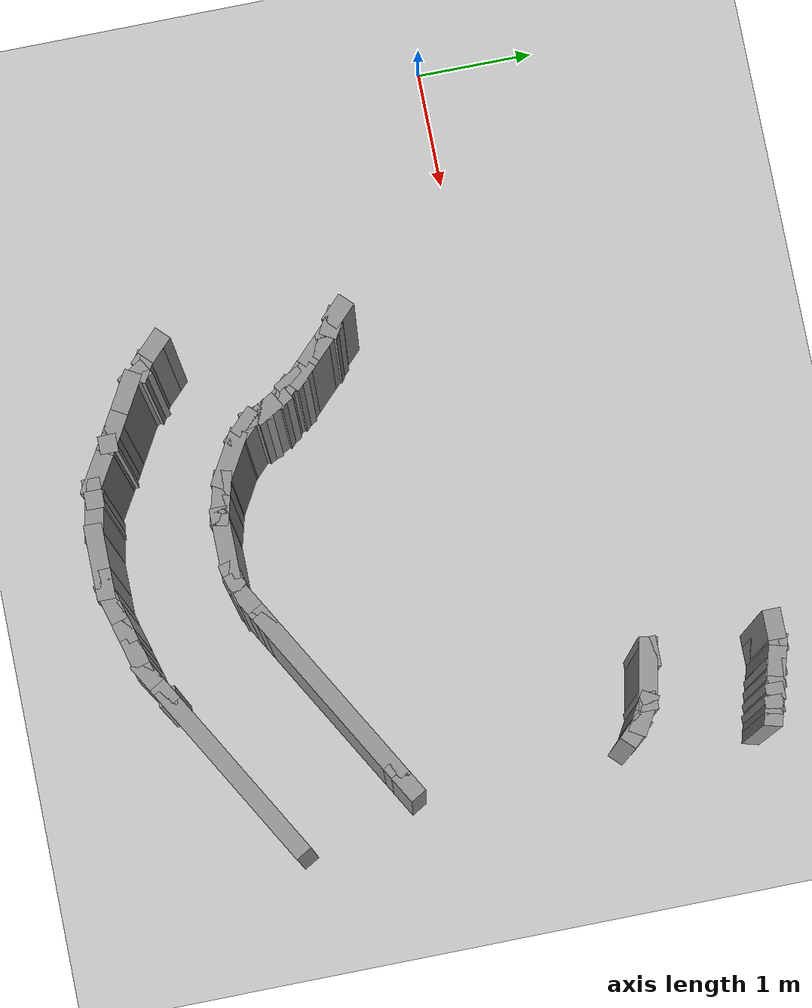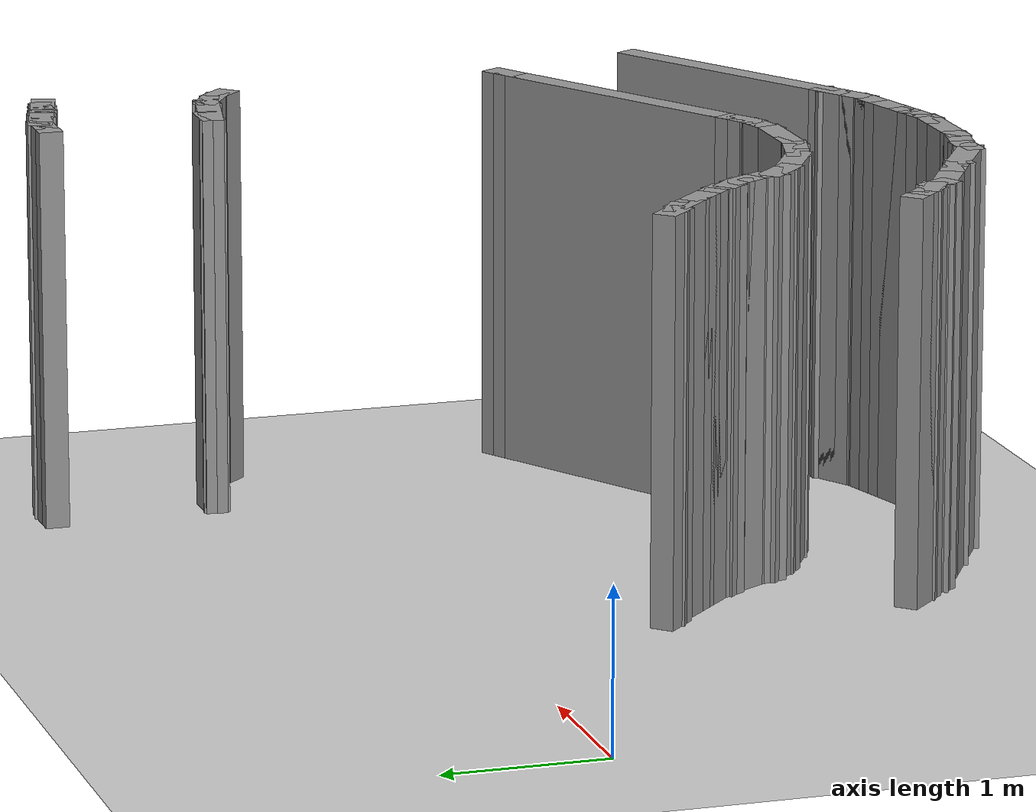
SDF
<sdf version="1.7">
 <world name="default">
  <model name="ground_plane">
   <static>1</static>
   <link name="link">
    <collision name="collision">
     <geometry><plane><normal>0 0 1</normal><size>100 100</size></plane></geometry>
     <surface><friction><ode><mu>100</mu><mu2>50</mu2></ode></friction></surface>
    </collision>
    <visual name="visual">
     <cast_shadows>0</cast_shadows>
     <geometry><plane><normal>0 0 1</normal><size>100 100</size></plane></geometry>
     <material>
      <script><uri>file://media/materials/scripts/gazebo.material</uri><name>Gazebo/Grey</name></script>
     </material>
    </visual>
   </link>
  </model>
  <model name="playground_track">
   <pose>0.405729 -1.1815 0 0 -0 0</pose>
   <link name="Wall_100">
    <collision name="Wall_100_Collision">
     <geometry><box><size>0.25 0.15 2.5</size></box></geometry>
     <pose>0 0 1.25 0 -0 0</pose>
    </collision>
    <visual name="Wall_100_Visual">
     <pose>0 0 1.25 0 -0 0</pose>
     <geometry><box><size>0.25 0.15 2.5</size></box></geometry>
     <material>
      <script><uri>file://media/materials/scripts/gazebo.material</uri><name>Gazebo/Grey</name></script>
      <ambient>1 1 1 1</ambient>
     </material>
     <meta><layer>0</layer></meta>
    </visual>
    <pose>4.11775 -2.12764 0 0 -0 -2.87979</pose>
   </link>
   <link name="Wall_101">
    <collision name="Wall_101_Collision">
     <geometry><box><size>0.25 0.15 2.5</size></box></geometry>
     <pose>0 0 1.25 0 -0 0</pose>
    </collision>
    <visual name="Wall_101_Visual">
     <pose>0 0 1.25 0 -0 0</pose>
     <geometry><box><size>0.25 0.15 2.5</size></box></geometry>
     <material>
      <script><uri>file://media/materials/scripts/gazebo.material</uri><name>Gazebo/Grey</name></script>
      <ambient>1 1 1 1</ambient>
     </material>
     <meta><layer>0</layer></meta>
    </visual>
    <pose>4.02116 -2.15352 0 0 -0 -2.87979</pose>
   </link>
   <link name="Wall_102">
    <collision name="Wall_102_Collision">
     <geometry><box><size>0.25 0.15 2.5</size></box></geometry>
     <pose>0 0 1.25 0 -0 0</pose>
    </collision>
    <visual name="Wall_102_Visual">
     <pose>0 0 1.25 0 -0 0</pose>
     <geometry><box><size>0.25 0.15 2.5</size></box></geometry>
     <material>
      <script><uri>file://media/materials/scripts/gazebo.material</uri><name>Gazebo/Grey</name></script>
      <ambient>1 1 1 1</ambient>
     </material>
     <meta><layer>0</layer></meta>
    </visual>
    <pose>3.92457 -2.17941 0 0 -0 -2.87979</pose>
   </link>
   <link name="Wall_103">
    <collision name="Wall_103_Collision">
     <geometry><box><size>0.25 0.15 2.5</size></box></geometry>
     <pose>0 0 1.25 0 -0 0</pose>
    </collision>
    <visual name="Wall_103_Visual">
     <pose>0 0 1.25 0 -0 0</pose>
     <geometry><box><size>0.25 0.15 2.5</size></box></geometry>
     <material>
      <script><uri>file://media/materials/scripts/gazebo.material</uri><name>Gazebo/Grey</name></script>
      <ambient>1 1 1 1</ambient>
     </material>
     <meta><layer>0</layer></meta>
    </visual>
    <pose>3.82797 -2.20529 0 0 -0 -2.87979</pose>
   </link>
   <link name="Wall_104">
    <collision name="Wall_104_Collision">
     <geometry><box><size>0.25 0.15 2.5</size></box></geometry>
     <pose>0 0 1.25 0 -0 0</pose>
    </collision>
    <visual name="Wall_104_Visual">
     <pose>0 0 1.25 0 -0 0</pose>
     <geometry><box><size>0.25 0.15 2.5</size></box></geometry>
     <material>
      <script><uri>file://media/materials/scripts/gazebo.material</uri><name>Gazebo/Grey</name></script>
      <ambient>1 1 1 1</ambient>
     </material>
     <meta><layer>0</layer></meta>
    </visual>
    <pose>3.72968 -2.21823 0 0 -0 3.14159</pose>
   </link>
   <link name="Wall_105">
    <collision name="Wall_105_Collision">
     <geometry><box><size>0.52645 0.15 2.5</size></box></geometry>
     <pose>0 0 1.25 0 -0 0</pose>
    </collision>
    <visual name="Wall_105_Visual">
     <pose>0 0 1.25 0 -0 0</pose>
     <geometry><box><size>0.52645 0.15 2.5</size></box></geometry>
     <material>
      <script><uri>file://media/materials/scripts/gazebo.material</uri><name>Gazebo/Grey</name></script>
      <ambient>1 1 1 1</ambient>
     </material>
     <meta><layer>0</layer></meta>
    </visual>
    <pose>3.49145 -2.21823 0 0 -0 3.14159</pose>
   </link>
   <link name="Wall_106">
    <collision name="Wall_106_Collision">
     <geometry><box><size>0.15 0.15 2.5</size></box></geometry>
     <pose>0 0 1.25 0 -0 0</pose>
    </collision>
    <visual name="Wall_106_Visual">
     <pose>0 0 1.25 0 -0 0</pose>
     <geometry><box><size>0.15 0.15 2.5</size></box></geometry>
     <material>
      <script><uri>file://media/materials/scripts/gazebo.material</uri><name>Gazebo/Grey</name></script>
      <ambient>1 1 1 1</ambient>
     </material>
     <meta><layer>0</layer></meta>
    </visual>
    <pose>3.30323 -2.21823 0 0 -0 0</pose>
   </link>
   <link name="Wall_110">
    <collision name="Wall_110_Collision">
     <geometry><box><size>0.15 0.15 2.5</size></box></geometry>
     <pose>0 0 1.25 0 -0 0</pose>
    </collision>
    <visual name="Wall_110_Visual">
     <pose>0 0 1.25 0 -0 0</pose>
     <geometry><box><size>0.15 0.15 2.5</size></box></geometry>
     <material>
      <script><uri>file://media/materials/scripts/gazebo.material</uri><name>Gazebo/Grey</name></script>
      <ambient>1 1 1 1</ambient>
     </material>
     <meta><layer>0</layer></meta>
    </visual>
    <pose>3.03649 -2.16647 0 0 -0 0</pose>
   </link>
   <link name="Wall_114">
    <collision name="Wall_114_Collision">
     <geometry><box><size>0.421712 0.15 2.5</size></box></geometry>
     <pose>0 0 1.25 0 -0 0</pose>
    </collision>
    <visual name="Wall_114_Visual">
     <pose>0 0 1.25 0 -0 0</pose>
     <geometry><box><size>0.421712 0.15 2.5</size></box></geometry>
     <material>
      <script><uri>file://media/materials/scripts/gazebo.material</uri><name>Gazebo/Grey</name></script>
      <ambient>1 1 1 1</ambient>
     </material>
     <meta><layer>0</layer></meta>
    </visual>
    <pose>3.16986 -2.19235 0 0 -0 2.94991</pose>
   </link>
   <link name="Wall_115">
    <collision name="Wall_115_Collision">
     <geometry><box><size>0.15 0.15 2.5</size></box></geometry>
     <pose>0 0 1.25 0 -0 0</pose>
    </collision>
    <visual name="Wall_115_Visual">
     <pose>0 0 1.25 0 -0 0</pose>
     <geometry><box><size>0.15 0.15 2.5</size></box></geometry>
     <material>
      <script><uri>file://media/materials/scripts/gazebo.material</uri><name>Gazebo/Grey</name></script>
      <ambient>1 1 1 1</ambient>
     </material>
     <meta><layer>0</layer></meta>
    </visual>
    <pose>3.03649 -2.16647 0 0 -0 0</pose>
   </link>
   <link name="Wall_118">
    <collision name="Wall_118_Collision">
     <geometry><box><size>0.15 0.15 2.5</size></box></geometry>
     <pose>0 0 1.25 0 -0 0</pose>
    </collision>
    <visual name="Wall_118_Visual">
     <pose>0 0 1.25 0 -0 0</pose>
     <geometry><box><size>0.15 0.15 2.5</size></box></geometry>
     <material>
      <script><uri>file://media/materials/scripts/gazebo.material</uri><name>Gazebo/Grey</name></script>
      <ambient>1 1 1 1</ambient>
     </material>
     <meta><layer>0</layer></meta>
    </visual>
    <pose>2.61182 -1.97298 0 0 -0 0</pose>
   </link>
   <link name="Wall_120">
    <collision name="Wall_120_Collision">
     <geometry><box><size>0.15 0.15 2.5</size></box></geometry>
     <pose>0 0 1.25 0 -0 0</pose>
    </collision>
    <visual name="Wall_120_Visual">
     <pose>0 0 1.25 0 -0 0</pose>
     <geometry><box><size>0.15 0.15 2.5</size></box></geometry>
     <material>
      <script><uri>file://media/materials/scripts/gazebo.material</uri><name>Gazebo/Grey</name></script>
      <ambient>1 1 1 1</ambient>
     </material>
     <meta><layer>0</layer></meta>
    </visual>
    <pose>3.03649 -2.16647 0 0 -0 0</pose>
   </link>
   <link name="Wall_124">
    <collision name="Wall_124_Collision">
     <geometry><box><size>0.25 0.15 2.5</size></box></geometry>
     <pose>0 0 1.25 0 -0 0</pose>
    </collision>
    <visual name="Wall_124_Visual">
     <pose>0 0 1.25 0 -0 0</pose>
     <geometry><box><size>0.25 0.15 2.5</size></box></geometry>
     <material>
      <script><uri>file://media/materials/scripts/gazebo.material</uri><name>Gazebo/Grey</name></script>
      <ambient>1 1 1 1</ambient>
     </material>
     <meta><layer>0</layer></meta>
    </visual>
    <pose>2.98649 -2.16647 0 0 -0 3.14159</pose>
   </link>
   <link name="Wall_125">
    <collision name="Wall_125_Collision">
     <geometry><box><size>0.527958 0.15 2.5</size></box></geometry>
     <pose>0 0 1.25 0 -0 0</pose>
    </collision>
    <visual name="Wall_125_Visual">
     <pose>0 0 1.25 0 -0 0</pose>
     <geometry><box><size>0.527958 0.15 2.5</size></box></geometry>
     <material>
      <script><uri>file://media/materials/scripts/gazebo.material</uri><name>Gazebo/Grey</name></script>
      <ambient>1 1 1 1</ambient>
     </material>
     <meta><layer>0</layer></meta>
    </visual>
    <pose>2.77415 -2.06972 0 0 -0 2.60417</pose>
   </link>
   <link name="Wall_126">
    <collision name="Wall_126_Collision">
     <geometry><box><size>0.25 0.15 2.5</size></box></geometry>
     <pose>0 0 1.25 0 -0 0</pose>
    </collision>
    <visual name="Wall_126_Visual">
     <pose>0 0 1.25 0 -0 0</pose>
     <geometry><box><size>0.25 0.15 2.5</size></box></geometry>
     <material>
      <script><uri>file://media/materials/scripts/gazebo.material</uri><name>Gazebo/Grey</name></script>
      <ambient>1 1 1 1</ambient>
     </material>
     <meta><layer>0</layer></meta>
    </visual>
    <pose>2.56852 -1.94798 0 0 -0 2.61799</pose>
   </link>
   <link name="Wall_127">
    <collision name="Wall_127_Collision">
     <geometry><box><size>0.25 0.15 2.5</size></box></geometry>
     <pose>0 0 1.25 0 -0 0</pose>
    </collision>
    <visual name="Wall_127_Visual">
     <pose>0 0 1.25 0 -0 0</pose>
     <geometry><box><size>0.25 0.15 2.5</size></box></geometry>
     <material>
      <script><uri>file://media/materials/scripts/gazebo.material</uri><name>Gazebo/Grey</name></script>
      <ambient>1 1 1 1</ambient>
     </material>
     <meta><layer>0</layer></meta>
    </visual>
    <pose>2.48191 -1.89798 0 0 -0 2.61799</pose>
   </link>
   <link name="Wall_128">
    <collision name="Wall_128_Collision">
     <geometry><box><size>0.5 0.15 2.5</size></box></geometry>
     <pose>0 0 1.25 0 -0 0</pose>
    </collision>
    <visual name="Wall_128_Visual">
     <pose>0 0 1.25 0 -0 0</pose>
     <geometry><box><size>0.5 0.15 2.5</size></box></geometry>
     <material>
      <script><uri>file://media/materials/scripts/gazebo.material</uri><name>Gazebo/Grey</name></script>
      <ambient>1 1 1 1</ambient>
     </material>
     <meta><layer>0</layer></meta>
    </visual>
    <pose>2.28706 -1.78548 0 0 -0 2.61799</pose>
   </link>
   <link name="Wall_129">
    <collision name="Wall_129_Collision">
     <geometry><box><size>0.25 0.15 2.5</size></box></geometry>
     <pose>0 0 1.25 0 -0 0</pose>
    </collision>
    <visual name="Wall_129_Visual">
     <pose>0 0 1.25 0 -0 0</pose>
     <geometry><box><size>0.25 0.15 2.5</size></box></geometry>
     <material>
      <script><uri>file://media/materials/scripts/gazebo.material</uri><name>Gazebo/Grey</name></script>
      <ambient>1 1 1 1</ambient>
     </material>
     <meta><layer>0</layer></meta>
    </visual>
    <pose>2.1105 -1.65468 0 0 -0 2.0944</pose>
   </link>
   <link name="Wall_130">
    <collision name="Wall_130_Collision">
     <geometry><box><size>0.25 0.15 2.5</size></box></geometry>
     <pose>0 0 1.25 0 -0 0</pose>
    </collision>
    <visual name="Wall_130_Visual">
     <pose>0 0 1.25 0 -0 0</pose>
     <geometry><box><size>0.25 0.15 2.5</size></box></geometry>
     <material>
      <script><uri>file://media/materials/scripts/gazebo.material</uri><name>Gazebo/Grey</name></script>
      <ambient>1 1 1 1</ambient>
     </material>
     <meta><layer>0</layer></meta>
    </visual>
    <pose>2.0422 -1.58638 0 0 -0 2.61799</pose>
   </link>
   <link name="Wall_131">
    <collision name="Wall_131_Collision">
     <geometry><box><size>0.25 0.15 2.5</size></box></geometry>
     <pose>0 0 1.25 0 -0 0</pose>
    </collision>
    <visual name="Wall_131_Visual">
     <pose>0 0 1.25 0 -0 0</pose>
     <geometry><box><size>0.25 0.15 2.5</size></box></geometry>
     <material>
      <script><uri>file://media/materials/scripts/gazebo.material</uri><name>Gazebo/Grey</name></script>
      <ambient>1 1 1 1</ambient>
     </material>
     <meta><layer>0</layer></meta>
    </visual>
    <pose>1.96354 -1.52602 0 0 -0 2.35619</pose>
   </link>
   <link name="Wall_132">
    <collision name="Wall_132_Collision">
     <geometry><box><size>0.25 0.15 2.5</size></box></geometry>
     <pose>0 0 1.25 0 -0 0</pose>
    </collision>
    <visual name="Wall_132_Visual">
     <pose>0 0 1.25 0 -0 0</pose>
     <geometry><box><size>0.25 0.15 2.5</size></box></geometry>
     <material>
      <script><uri>file://media/materials/scripts/gazebo.material</uri><name>Gazebo/Grey</name></script>
      <ambient>1 1 1 1</ambient>
     </material>
     <meta><layer>0</layer></meta>
    </visual>
    <pose>1.89283 -1.45531 0 0 -0 2.35619</pose>
   </link>
   <link name="Wall_15">
    <collision name="Wall_15_Collision">
     <geometry><box><size>0.25 0.15 2.5</size></box></geometry>
     <pose>0 0 1.25 0 -0 0</pose>
    </collision>
    <visual name="Wall_15_Visual">
     <pose>0 0 1.25 0 -0 0</pose>
     <geometry><box><size>0.25 0.15 2.5</size></box></geometry>
     <material>
      <script><uri>file://media/materials/scripts/gazebo.material</uri><name>Gazebo/Grey</name></script>
      <ambient>1 1 1 1</ambient>
     </material>
     <meta><layer>0</layer></meta>
    </visual>
    <pose>5.29448 3.00337 0 0 -0 -0.261799</pose>
   </link>
   <link name="Wall_16">
    <collision name="Wall_16_Collision">
     <geometry><box><size>0.25 0.15 2.5</size></box></geometry>
     <pose>0 0 1.25 0 -0 0</pose>
    </collision>
    <visual name="Wall_16_Visual">
     <pose>0 0 1.25 0 -0 0</pose>
     <geometry><box><size>0.25 0.15 2.5</size></box></geometry>
     <material>
      <script><uri>file://media/materials/scripts/gazebo.material</uri><name>Gazebo/Grey</name></script>
      <ambient>1 1 1 1</ambient>
     </material>
     <meta><layer>0</layer></meta>
    </visual>
    <pose>5.39108 2.97749 0 0 -0 -0.261799</pose>
   </link>
   <link name="Wall_17">
    <collision name="Wall_17_Collision">
     <geometry><box><size>0.15 0.15 2.5</size></box></geometry>
     <pose>0 0 1.25 0 -0 0</pose>
    </collision>
    <visual name="Wall_17_Visual">
     <pose>0 0 1.25 0 -0 0</pose>
     <geometry><box><size>0.15 0.15 2.5</size></box></geometry>
     <material>
      <script><uri>file://media/materials/scripts/gazebo.material</uri><name>Gazebo/Grey</name></script>
      <ambient>1 1 1 1</ambient>
     </material>
     <meta><layer>0</layer></meta>
    </visual>
    <pose>5.43937 2.96455 0 0 -0 0</pose>
   </link>
   <link name="Wall_18">
    <collision name="Wall_18_Collision">
     <geometry><box><size>0.25 0.15 2.5</size></box></geometry>
     <pose>0 0 1.25 0 -0 0</pose>
    </collision>
    <visual name="Wall_18_Visual">
     <pose>0 0 1.25 0 -0 0</pose>
     <geometry><box><size>0.25 0.15 2.5</size></box></geometry>
     <material>
      <script><uri>file://media/materials/scripts/gazebo.material</uri><name>Gazebo/Grey</name></script>
      <ambient>1 1 1 1</ambient>
     </material>
     <meta><layer>0</layer></meta>
    </visual>
    <pose>5.48767 2.9516 0 0 -0 -0.261799</pose>
   </link>
   <link name="Wall_19">
    <collision name="Wall_19_Collision">
     <geometry><box><size>0.15 0.15 2.5</size></box></geometry>
     <pose>0 0 1.25 0 -0 0</pose>
    </collision>
    <visual name="Wall_19_Visual">
     <pose>0 0 1.25 0 -0 0</pose>
     <geometry><box><size>0.15 0.15 2.5</size></box></geometry>
     <material>
      <script><uri>file://media/materials/scripts/gazebo.material</uri><name>Gazebo/Grey</name></script>
      <ambient>1 1 1 1</ambient>
     </material>
     <meta><layer>0</layer></meta>
    </visual>
    <pose>5.53597 2.93866 0 0 -0 0</pose>
   </link>
   <link name="Wall_2">
    <collision name="Wall_2_Collision">
     <geometry><box><size>0.25 0.15 2.5</size></box></geometry>
     <pose>0 0 1.25 0 -0 0</pose>
    </collision>
    <visual name="Wall_2_Visual">
     <pose>0 0 1.25 0 -0 0</pose>
     <geometry><box><size>0.25 0.15 2.5</size></box></geometry>
     <material>
      <script><uri>file://media/materials/scripts/gazebo.material</uri><name>Gazebo/Grey</name></script>
      <ambient>1 1 1 1</ambient>
     </material>
     <meta><layer>0</layer></meta>
    </visual>
    <pose>5.09619 3.01631 0 0 -0 0</pose>
   </link>
   <link name="Wall_20">
    <collision name="Wall_20_Collision">
     <geometry><box><size>0.25 0.15 2.5</size></box></geometry>
     <pose>0 0 1.25 0 -0 0</pose>
    </collision>
    <visual name="Wall_20_Visual">
     <pose>0 0 1.25 0 -0 0</pose>
     <geometry><box><size>0.25 0.15 2.5</size></box></geometry>
     <material>
      <script><uri>file://media/materials/scripts/gazebo.material</uri><name>Gazebo/Grey</name></script>
      <ambient>1 1 1 1</ambient>
     </material>
     <meta><layer>0</layer></meta>
    </visual>
    <pose>5.58426 2.92572 0 0 -0 -0.261799</pose>
   </link>
   <link name="Wall_21">
    <collision name="Wall_21_Collision">
     <geometry><box><size>0.15 0.15 2.5</size></box></geometry>
     <pose>0 0 1.25 0 -0 0</pose>
    </collision>
    <visual name="Wall_21_Visual">
     <pose>0 0 1.25 0 -0 0</pose>
     <geometry><box><size>0.15 0.15 2.5</size></box></geometry>
     <material>
      <script><uri>file://media/materials/scripts/gazebo.material</uri><name>Gazebo/Grey</name></script>
      <ambient>1 1 1 1</ambient>
     </material>
     <meta><layer>0</layer></meta>
    </visual>
    <pose>5.63256 2.91278 0 0 -0 0</pose>
   </link>
   <link name="Wall_22">
    <collision name="Wall_22_Collision">
     <geometry><box><size>0.25 0.15 2.5</size></box></geometry>
     <pose>0 0 1.25 0 -0 0</pose>
    </collision>
    <visual name="Wall_22_Visual">
     <pose>0 0 1.25 0 -0 0</pose>
     <geometry><box><size>0.25 0.15 2.5</size></box></geometry>
     <material>
      <script><uri>file://media/materials/scripts/gazebo.material</uri><name>Gazebo/Grey</name></script>
      <ambient>1 1 1 1</ambient>
     </material>
     <meta><layer>0</layer></meta>
    </visual>
    <pose>5.68086 2.89984 0 0 -0 -0.261799</pose>
   </link>
   <link name="Wall_23">
    <collision name="Wall_23_Collision">
     <geometry><box><size>0.15 0.15 2.5</size></box></geometry>
     <pose>0 0 1.25 0 -0 0</pose>
    </collision>
    <visual name="Wall_23_Visual">
     <pose>0 0 1.25 0 -0 0</pose>
     <geometry><box><size>0.15 0.15 2.5</size></box></geometry>
     <material>
      <script><uri>file://media/materials/scripts/gazebo.material</uri><name>Gazebo/Grey</name></script>
      <ambient>1 1 1 1</ambient>
     </material>
     <meta><layer>0</layer></meta>
    </visual>
    <pose>5.72915 2.8869 0 0 -0 0</pose>
   </link>
   <link name="Wall_24">
    <collision name="Wall_24_Collision">
     <geometry><box><size>0.25 0.15 2.5</size></box></geometry>
     <pose>0 0 1.25 0 -0 0</pose>
    </collision>
    <visual name="Wall_24_Visual">
     <pose>0 0 1.25 0 -0 0</pose>
     <geometry><box><size>0.25 0.15 2.5</size></box></geometry>
     <material>
      <script><uri>file://media/materials/scripts/gazebo.material</uri><name>Gazebo/Grey</name></script>
      <ambient>1 1 1 1</ambient>
     </material>
     <meta><layer>0</layer></meta>
    </visual>
    <pose>5.77745 2.87396 0 0 -0 -0.261799</pose>
   </link>
   <link name="Wall_276">
    <collision name="Wall_276_Collision">
     <geometry><box><size>0.25 0.15 2.5</size></box></geometry>
     <pose>0 0 1.25 0 -0 0</pose>
    </collision>
    <visual name="Wall_276_Visual">
     <pose>0 0 1.25 0 -0 0</pose>
     <geometry><box><size>0.25 0.15 2.5</size></box></geometry>
     <material>
      <script><uri>file://media/materials/scripts/gazebo.material</uri><name>Gazebo/Grey</name></script>
      <ambient>1 1 1 1</ambient>
     </material>
     <meta><layer>0</layer></meta>
    </visual>
    <pose>5.12264 1.98476 0 0 -0 0</pose>
   </link>
   <link name="Wall_278">
    <collision name="Wall_278_Collision">
     <geometry><box><size>0.15 0.15 2.5</size></box></geometry>
     <pose>0 0 1.25 0 -0 0</pose>
    </collision>
    <visual name="Wall_278_Visual">
     <pose>0 0 1.25 0 -0 0</pose>
     <geometry><box><size>0.15 0.15 2.5</size></box></geometry>
     <material>
      <script><uri>file://media/materials/scripts/gazebo.material</uri><name>Gazebo/Grey</name></script>
      <ambient>1 1 1 1</ambient>
     </material>
     <meta><layer>0</layer></meta>
    </visual>
    <pose>5.51071 1.89417 0 0 -0 0</pose>
   </link>
   <link name="Wall_282">
    <collision name="Wall_282_Collision">
     <geometry><box><size>0.597342 0.15 2.5</size></box></geometry>
     <pose>0 0 1.25 0 -0 0</pose>
    </collision>
    <visual name="Wall_282_Visual">
     <pose>0 0 1.25 0 -0 0</pose>
     <geometry><box><size>0.597342 0.15 2.5</size></box></geometry>
     <material>
      <script><uri>file://media/materials/scripts/gazebo.material</uri><name>Gazebo/Grey</name></script>
      <ambient>1 1 1 1</ambient>
     </material>
     <meta><layer>0</layer></meta>
    </visual>
    <pose>5.29168 1.93946 0 0 -0 -0.20391</pose>
   </link>
   <link name="Wall_283">
    <collision name="Wall_283_Collision">
     <geometry><box><size>0.15 0.15 2.5</size></box></geometry>
     <pose>0 0 1.25 0 -0 0</pose>
    </collision>
    <visual name="Wall_283_Visual">
     <pose>0 0 1.25 0 -0 0</pose>
     <geometry><box><size>0.15 0.15 2.5</size></box></geometry>
     <material>
      <script><uri>file://media/materials/scripts/gazebo.material</uri><name>Gazebo/Grey</name></script>
      <ambient>1 1 1 1</ambient>
     </material>
     <meta><layer>0</layer></meta>
    </visual>
    <pose>5.51071 1.89417 0 0 -0 0</pose>
   </link>
   <link name="Wall_284">
    <collision name="Wall_284_Collision">
     <geometry><box><size>0.25 0.15 2.5</size></box></geometry>
     <pose>0 0 1.25 0 -0 0</pose>
    </collision>
    <visual name="Wall_284_Visual">
     <pose>0 0 1.25 0 -0 0</pose>
     <geometry><box><size>0.25 0.15 2.5</size></box></geometry>
     <material>
      <script><uri>file://media/materials/scripts/gazebo.material</uri><name>Gazebo/Grey</name></script>
      <ambient>1 1 1 1</ambient>
     </material>
     <meta><layer>0</layer></meta>
    </visual>
    <pose>5.55401 1.86917 0 0 -0 -0.523599</pose>
   </link>
   <link name="Wall_285">
    <collision name="Wall_285_Collision">
     <geometry><box><size>0.25 0.15 2.5</size></box></geometry>
     <pose>0 0 1.25 0 -0 0</pose>
    </collision>
    <visual name="Wall_285_Visual">
     <pose>0 0 1.25 0 -0 0</pose>
     <geometry><box><size>0.25 0.15 2.5</size></box></geometry>
     <material>
      <script><uri>file://media/materials/scripts/gazebo.material</uri><name>Gazebo/Grey</name></script>
      <ambient>1 1 1 1</ambient>
     </material>
     <meta><layer>0</layer></meta>
    </visual>
    <pose>5.64062 1.81917 0 0 -0 -0.523599</pose>
   </link>
   <link name="Wall_286">
    <collision name="Wall_286_Collision">
     <geometry><box><size>0.25 0.15 2.5</size></box></geometry>
     <pose>0 0 1.25 0 -0 0</pose>
    </collision>
    <visual name="Wall_286_Visual">
     <pose>0 0 1.25 0 -0 0</pose>
     <geometry><box><size>0.25 0.15 2.5</size></box></geometry>
     <material>
      <script><uri>file://media/materials/scripts/gazebo.material</uri><name>Gazebo/Grey</name></script>
      <ambient>1 1 1 1</ambient>
     </material>
     <meta><layer>0</layer></meta>
    </visual>
    <pose>5.71927 1.75882 0 0 -0 -0.785398</pose>
   </link>
   <link name="Wall_308">
    <collision name="Wall_308_Collision">
     <geometry><box><size>0.25 0.15 2.5</size></box></geometry>
     <pose>0 0 1.25 0 -0 0</pose>
    </collision>
    <visual name="Wall_308_Visual">
     <pose>0 0 1.25 0 -0 0</pose>
     <geometry><box><size>0.25 0.15 2.5</size></box></geometry>
     <material>
      <script><uri>file://media/materials/scripts/gazebo.material</uri><name>Gazebo/Grey</name></script>
      <ambient>1 1 1 1</ambient>
     </material>
     <meta><layer>0</layer></meta>
    </visual>
    <pose>5.78545 -0.121566 0 0 -0 -2.61799</pose>
   </link>
   <link name="Wall_309">
    <collision name="Wall_309_Collision">
     <geometry><box><size>0.25 0.15 2.5</size></box></geometry>
     <pose>0 0 1.25 0 -0 0</pose>
    </collision>
    <visual name="Wall_309_Visual">
     <pose>0 0 1.25 0 -0 0</pose>
     <geometry><box><size>0.25 0.15 2.5</size></box></geometry>
     <material>
      <script><uri>file://media/materials/scripts/gazebo.material</uri><name>Gazebo/Grey</name></script>
      <ambient>1 1 1 1</ambient>
     </material>
     <meta><layer>0</layer></meta>
    </visual>
    <pose>5.69884 -0.171566 0 0 -0 -2.61799</pose>
   </link>
   <link name="Wall_310">
    <collision name="Wall_310_Collision">
     <geometry><box><size>1.75 0.15 2.5</size></box></geometry>
     <pose>0 0 1.25 0 -0 0</pose>
    </collision>
    <visual name="Wall_310_Visual">
     <pose>0 0 1.25 0 -0 0</pose>
     <geometry><box><size>1.75 0.15 2.5</size></box></geometry>
     <material>
      <script><uri>file://media/materials/scripts/gazebo.material</uri><name>Gazebo/Grey</name></script>
      <ambient>1 1 1 1</ambient>
     </material>
     <meta><layer>0</layer></meta>
    </visual>
    <pose>4.96272 -0.596566 0 0 -0 -2.61799</pose>
   </link>
   <link name="Wall_311">
    <collision name="Wall_311_Collision">
     <geometry><box><size>0.25 0.15 2.5</size></box></geometry>
     <pose>0 0 1.25 0 -0 0</pose>
    </collision>
    <visual name="Wall_311_Visual">
     <pose>0 0 1.25 0 -0 0</pose>
     <geometry><box><size>0.25 0.15 2.5</size></box></geometry>
     <material>
      <script><uri>file://media/materials/scripts/gazebo.material</uri><name>Gazebo/Grey</name></script>
      <ambient>1 1 1 1</ambient>
     </material>
     <meta><layer>0</layer></meta>
    </visual>
    <pose>4.2266 -1.02157 0 0 -0 -2.61799</pose>
   </link>
   <link name="Wall_312">
    <collision name="Wall_312_Collision">
     <geometry><box><size>0.25 0.15 2.5</size></box></geometry>
     <pose>0 0 1.25 0 -0 0</pose>
    </collision>
    <visual name="Wall_312_Visual">
     <pose>0 0 1.25 0 -0 0</pose>
     <geometry><box><size>0.25 0.15 2.5</size></box></geometry>
     <material>
      <script><uri>file://media/materials/scripts/gazebo.material</uri><name>Gazebo/Grey</name></script>
      <ambient>1 1 1 1</ambient>
     </material>
     <meta><layer>0</layer></meta>
    </visual>
    <pose>4.14 -1.07157 0 0 -0 -2.61799</pose>
   </link>
   <link name="Wall_313">
    <collision name="Wall_313_Collision">
     <geometry><box><size>0.25 0.15 2.5</size></box></geometry>
     <pose>0 0 1.25 0 -0 0</pose>
    </collision>
    <visual name="Wall_313_Visual">
     <pose>0 0 1.25 0 -0 0</pose>
     <geometry><box><size>0.25 0.15 2.5</size></box></geometry>
     <material>
      <script><uri>file://media/materials/scripts/gazebo.material</uri><name>Gazebo/Grey</name></script>
      <ambient>1 1 1 1</ambient>
     </material>
     <meta><layer>0</layer></meta>
    </visual>
    <pose>4.0534 -1.12157 0 0 -0 -2.61799</pose>
   </link>
   <link name="Wall_314">
    <collision name="Wall_314_Collision">
     <geometry><box><size>0.25 0.15 2.5</size></box></geometry>
     <pose>0 0 1.25 0 -0 0</pose>
    </collision>
    <visual name="Wall_314_Visual">
     <pose>0 0 1.25 0 -0 0</pose>
     <geometry><box><size>0.25 0.15 2.5</size></box></geometry>
     <material>
      <script><uri>file://media/materials/scripts/gazebo.material</uri><name>Gazebo/Grey</name></script>
      <ambient>1 1 1 1</ambient>
     </material>
     <meta><layer>0</layer></meta>
    </visual>
    <pose>3.9618 -1.15951 0 0 -0 -2.87979</pose>
   </link>
   <link name="Wall_315">
    <collision name="Wall_315_Collision">
     <geometry><box><size>0.25 0.15 2.5</size></box></geometry>
     <pose>0 0 1.25 0 -0 0</pose>
    </collision>
    <visual name="Wall_315_Visual">
     <pose>0 0 1.25 0 -0 0</pose>
     <geometry><box><size>0.25 0.15 2.5</size></box></geometry>
     <material>
      <script><uri>file://media/materials/scripts/gazebo.material</uri><name>Gazebo/Grey</name></script>
      <ambient>1 1 1 1</ambient>
     </material>
     <meta><layer>0</layer></meta>
    </visual>
    <pose>3.86521 -1.18539 0 0 -0 -2.87979</pose>
   </link>
   <link name="Wall_316">
    <collision name="Wall_316_Collision">
     <geometry><box><size>0.5 0.15 2.5</size></box></geometry>
     <pose>0 0 1.25 0 -0 0</pose>
    </collision>
    <visual name="Wall_316_Visual">
     <pose>0 0 1.25 0 -0 0</pose>
     <geometry><box><size>0.5 0.15 2.5</size></box></geometry>
     <material>
      <script><uri>file://media/materials/scripts/gazebo.material</uri><name>Gazebo/Grey</name></script>
      <ambient>1 1 1 1</ambient>
     </material>
     <meta><layer>0</layer></meta>
    </visual>
    <pose>3.64191 -1.19833 0 0 -0 3.14159</pose>
   </link>
   <link name="Wall_317">
    <collision name="Wall_317_Collision">
     <geometry><box><size>0.25 0.15 2.5</size></box></geometry>
     <pose>0 0 1.25 0 -0 0</pose>
    </collision>
    <visual name="Wall_317_Visual">
     <pose>0 0 1.25 0 -0 0</pose>
     <geometry><box><size>0.25 0.15 2.5</size></box></geometry>
     <material>
      <script><uri>file://media/materials/scripts/gazebo.material</uri><name>Gazebo/Grey</name></script>
      <ambient>1 1 1 1</ambient>
     </material>
     <meta><layer>0</layer></meta>
    </visual>
    <pose>3.41691 -1.19833 0 0 -0 3.14159</pose>
   </link>
   <link name="Wall_318">
    <collision name="Wall_318_Collision">
     <geometry><box><size>0.25 0.15 2.5</size></box></geometry>
     <pose>0 0 1.25 0 -0 0</pose>
    </collision>
    <visual name="Wall_318_Visual">
     <pose>0 0 1.25 0 -0 0</pose>
     <geometry><box><size>0.25 0.15 2.5</size></box></geometry>
     <material>
      <script><uri>file://media/materials/scripts/gazebo.material</uri><name>Gazebo/Grey</name></script>
      <ambient>1 1 1 1</ambient>
     </material>
     <meta><layer>0</layer></meta>
    </visual>
    <pose>3.31861 -1.18539 0 0 -0 2.87979</pose>
   </link>
   <link name="Wall_319">
    <collision name="Wall_319_Collision">
     <geometry><box><size>0.25 0.15 2.5</size></box></geometry>
     <pose>0 0 1.25 0 -0 0</pose>
    </collision>
    <visual name="Wall_319_Visual">
     <pose>0 0 1.25 0 -0 0</pose>
     <geometry><box><size>0.25 0.15 2.5</size></box></geometry>
     <material>
      <script><uri>file://media/materials/scripts/gazebo.material</uri><name>Gazebo/Grey</name></script>
      <ambient>1 1 1 1</ambient>
     </material>
     <meta><layer>0</layer></meta>
    </visual>
    <pose>3.22202 -1.15951 0 0 -0 2.87979</pose>
   </link>
   <link name="Wall_320">
    <collision name="Wall_320_Collision">
     <geometry><box><size>0.25 0.15 2.5</size></box></geometry>
     <pose>0 0 1.25 0 -0 0</pose>
    </collision>
    <visual name="Wall_320_Visual">
     <pose>0 0 1.25 0 -0 0</pose>
     <geometry><box><size>0.25 0.15 2.5</size></box></geometry>
     <material>
      <script><uri>file://media/materials/scripts/gazebo.material</uri><name>Gazebo/Grey</name></script>
      <ambient>1 1 1 1</ambient>
     </material>
     <meta><layer>0</layer></meta>
    </visual>
    <pose>3.12543 -1.13363 0 0 -0 2.87979</pose>
   </link>
   <link name="Wall_321">
    <collision name="Wall_321_Collision">
     <geometry><box><size>0.5 0.15 2.5</size></box></geometry>
     <pose>0 0 1.25 0 -0 0</pose>
    </collision>
    <visual name="Wall_321_Visual">
     <pose>0 0 1.25 0 -0 0</pose>
     <geometry><box><size>0.5 0.15 2.5</size></box></geometry>
     <material>
      <script><uri>file://media/materials/scripts/gazebo.material</uri><name>Gazebo/Grey</name></script>
      <ambient>1 1 1 1</ambient>
     </material>
     <meta><layer>0</layer></meta>
    </visual>
    <pose>2.92558 -1.03318 0 0 -0 2.61799</pose>
   </link>
   <link name="Wall_322">
    <collision name="Wall_322_Collision">
     <geometry><box><size>0.25 0.15 2.5</size></box></geometry>
     <pose>0 0 1.25 0 -0 0</pose>
    </collision>
    <visual name="Wall_322_Visual">
     <pose>0 0 1.25 0 -0 0</pose>
     <geometry><box><size>0.25 0.15 2.5</size></box></geometry>
     <material>
      <script><uri>file://media/materials/scripts/gazebo.material</uri><name>Gazebo/Grey</name></script>
      <ambient>1 1 1 1</ambient>
     </material>
     <meta><layer>0</layer></meta>
    </visual>
    <pose>2.73867 -0.910329 0 0 -0 2.35619</pose>
   </link>
   <link name="Wall_323">
    <collision name="Wall_323_Collision">
     <geometry><box><size>0.25 0.15 2.5</size></box></geometry>
     <pose>0 0 1.25 0 -0 0</pose>
    </collision>
    <visual name="Wall_323_Visual">
     <pose>0 0 1.25 0 -0 0</pose>
     <geometry><box><size>0.25 0.15 2.5</size></box></geometry>
     <material>
      <script><uri>file://media/materials/scripts/gazebo.material</uri><name>Gazebo/Grey</name></script>
      <ambient>1 1 1 1</ambient>
     </material>
     <meta><layer>0</layer></meta>
    </visual>
    <pose>2.66796 -0.839618 0 0 -0 2.35619</pose>
   </link>
   <link name="Wall_324">
    <collision name="Wall_324_Collision">
     <geometry><box><size>0.25 0.15 2.5</size></box></geometry>
     <pose>0 0 1.25 0 -0 0</pose>
    </collision>
    <visual name="Wall_324_Visual">
     <pose>0 0 1.25 0 -0 0</pose>
     <geometry><box><size>0.25 0.15 2.5</size></box></geometry>
     <material>
      <script><uri>file://media/materials/scripts/gazebo.material</uri><name>Gazebo/Grey</name></script>
      <ambient>1 1 1 1</ambient>
     </material>
     <meta><layer>0</layer></meta>
    </visual>
    <pose>2.61966 -0.755967 0 0 -0 1.8326</pose>
   </link>
   <link name="Wall_325">
    <collision name="Wall_325_Collision">
     <geometry><box><size>0.25 0.15 2.5</size></box></geometry>
     <pose>0 0 1.25 0 -0 0</pose>
    </collision>
    <visual name="Wall_325_Visual">
     <pose>0 0 1.25 0 -0 0</pose>
     <geometry><box><size>0.25 0.15 2.5</size></box></geometry>
     <material>
      <script><uri>file://media/materials/scripts/gazebo.material</uri><name>Gazebo/Grey</name></script>
      <ambient>1 1 1 1</ambient>
     </material>
     <meta><layer>0</layer></meta>
    </visual>
    <pose>2.58172 -0.664369 0 0 -0 2.0944</pose>
   </link>
   <link name="Wall_326">
    <collision name="Wall_326_Collision">
     <geometry><box><size>0.25 0.15 2.5</size></box></geometry>
     <pose>0 0 1.25 0 -0 0</pose>
    </collision>
    <visual name="Wall_326_Visual">
     <pose>0 0 1.25 0 -0 0</pose>
     <geometry><box><size>0.25 0.15 2.5</size></box></geometry>
     <material>
      <script><uri>file://media/materials/scripts/gazebo.material</uri><name>Gazebo/Grey</name></script>
      <ambient>1 1 1 1</ambient>
     </material>
     <meta><layer>0</layer></meta>
    </visual>
    <pose>2.53172 -0.577767 0 0 -0 2.0944</pose>
   </link>
   <link name="Wall_327">
    <collision name="Wall_327_Collision">
     <geometry><box><size>0.25 0.15 2.5</size></box></geometry>
     <pose>0 0 1.25 0 -0 0</pose>
    </collision>
    <visual name="Wall_327_Visual">
     <pose>0 0 1.25 0 -0 0</pose>
     <geometry><box><size>0.25 0.15 2.5</size></box></geometry>
     <material>
      <script><uri>file://media/materials/scripts/gazebo.material</uri><name>Gazebo/Grey</name></script>
      <ambient>1 1 1 1</ambient>
     </material>
     <meta><layer>0</layer></meta>
    </visual>
    <pose>2.47136 -0.49911 0 0 -0 2.35619</pose>
   </link>
   <link name="Wall_328">
    <collision name="Wall_328_Collision">
     <geometry><box><size>0.25 0.15 2.5</size></box></geometry>
     <pose>0 0 1.25 0 -0 0</pose>
    </collision>
    <visual name="Wall_328_Visual">
     <pose>0 0 1.25 0 -0 0</pose>
     <geometry><box><size>0.25 0.15 2.5</size></box></geometry>
     <material>
      <script><uri>file://media/materials/scripts/gazebo.material</uri><name>Gazebo/Grey</name></script>
      <ambient>1 1 1 1</ambient>
     </material>
     <meta><layer>0</layer></meta>
    </visual>
    <pose>2.41101 -0.420453 0 0 -0 2.0944</pose>
   </link>
   <link name="Wall_329">
    <collision name="Wall_329_Collision">
     <geometry><box><size>0.25 0.15 2.5</size></box></geometry>
     <pose>0 0 1.25 0 -0 0</pose>
    </collision>
    <visual name="Wall_329_Visual">
     <pose>0 0 1.25 0 -0 0</pose>
     <geometry><box><size>0.25 0.15 2.5</size></box></geometry>
     <material>
      <script><uri>file://media/materials/scripts/gazebo.material</uri><name>Gazebo/Grey</name></script>
      <ambient>1 1 1 1</ambient>
     </material>
     <meta><layer>0</layer></meta>
    </visual>
    <pose>2.35065 -0.341797 0 0 -0 2.35619</pose>
   </link>
   <link name="Wall_330">
    <collision name="Wall_330_Collision">
     <geometry><box><size>0.25 0.15 2.5</size></box></geometry>
     <pose>0 0 1.25 0 -0 0</pose>
    </collision>
    <visual name="Wall_330_Visual">
     <pose>0 0 1.25 0 -0 0</pose>
     <geometry><box><size>0.25 0.15 2.5</size></box></geometry>
     <material>
      <script><uri>file://media/materials/scripts/gazebo.material</uri><name>Gazebo/Grey</name></script>
      <ambient>1 1 1 1</ambient>
     </material>
     <meta><layer>0</layer></meta>
    </visual>
    <pose>2.27994 -0.271086 0 0 -0 2.35619</pose>
   </link>
   <link name="Wall_331">
    <collision name="Wall_331_Collision">
     <geometry><box><size>0.25 0.15 2.5</size></box></geometry>
     <pose>0 0 1.25 0 -0 0</pose>
    </collision>
    <visual name="Wall_331_Visual">
     <pose>0 0 1.25 0 -0 0</pose>
     <geometry><box><size>0.25 0.15 2.5</size></box></geometry>
     <material>
      <script><uri>file://media/materials/scripts/gazebo.material</uri><name>Gazebo/Grey</name></script>
      <ambient>1 1 1 1</ambient>
     </material>
     <meta><layer>0</layer></meta>
    </visual>
    <pose>2.20923 -0.200375 0 0 -0 2.35619</pose>
   </link>
   <link name="Wall_332">
    <collision name="Wall_332_Collision">
     <geometry><box><size>0.25 0.15 2.5</size></box></geometry>
     <pose>0 0 1.25 0 -0 0</pose>
    </collision>
    <visual name="Wall_332_Visual">
     <pose>0 0 1.25 0 -0 0</pose>
     <geometry><box><size>0.25 0.15 2.5</size></box></geometry>
     <material>
      <script><uri>file://media/materials/scripts/gazebo.material</uri><name>Gazebo/Grey</name></script>
      <ambient>1 1 1 1</ambient>
     </material>
     <meta><layer>0</layer></meta>
    </visual>
    <pose>2.13852 -0.129665 0 0 -0 2.35619</pose>
   </link>
   <link name="Wall_333">
    <collision name="Wall_333_Collision">
     <geometry><box><size>0.25 0.15 2.5</size></box></geometry>
     <pose>0 0 1.25 0 -0 0</pose>
    </collision>
    <visual name="Wall_333_Visual">
     <pose>0 0 1.25 0 -0 0</pose>
     <geometry><box><size>0.25 0.15 2.5</size></box></geometry>
     <material>
      <script><uri>file://media/materials/scripts/gazebo.material</uri><name>Gazebo/Grey</name></script>
      <ambient>1 1 1 1</ambient>
     </material>
     <meta><layer>0</layer></meta>
    </visual>
    <pose>2.06781 -0.058954 0 0 -0 2.35619</pose>
   </link>
   <link name="Wall_334">
    <collision name="Wall_334_Collision">
     <geometry><box><size>0.25 0.15 2.5</size></box></geometry>
     <pose>0 0 1.25 0 -0 0</pose>
    </collision>
    <visual name="Wall_334_Visual">
     <pose>0 0 1.25 0 -0 0</pose>
     <geometry><box><size>0.25 0.15 2.5</size></box></geometry>
     <material>
      <script><uri>file://media/materials/scripts/gazebo.material</uri><name>Gazebo/Grey</name></script>
      <ambient>1 1 1 1</ambient>
     </material>
     <meta><layer>0</layer></meta>
    </visual>
    <pose>1.98915 0.001401 0 0 -0 2.61799</pose>
   </link>
   <link name="Wall_335">
    <collision name="Wall_335_Collision">
     <geometry><box><size>0.25 0.15 2.5</size></box></geometry>
     <pose>0 0 1.25 0 -0 0</pose>
    </collision>
    <visual name="Wall_335_Visual">
     <pose>0 0 1.25 0 -0 0</pose>
     <geometry><box><size>0.25 0.15 2.5</size></box></geometry>
     <material>
      <script><uri>file://media/materials/scripts/gazebo.material</uri><name>Gazebo/Grey</name></script>
      <ambient>1 1 1 1</ambient>
     </material>
     <meta><layer>0</layer></meta>
    </visual>
    <pose>1.9105 0.061757 0 0 -0 2.35619</pose>
   </link>
   <link name="Wall_7">
    <collision name="Wall_7_Collision">
     <geometry><box><size>0.25 0.15 2.5</size></box></geometry>
     <pose>0 0 1.25 0 -0 0</pose>
    </collision>
    <visual name="Wall_7_Visual">
     <pose>0 0 1.25 0 -0 0</pose>
     <geometry><box><size>0.25 0.15 2.5</size></box></geometry>
     <material>
      <script><uri>file://media/materials/scripts/gazebo.material</uri><name>Gazebo/Grey</name></script>
      <ambient>1 1 1 1</ambient>
     </material>
     <meta><layer>0</layer></meta>
    </visual>
    <pose>5.09619 3.01631 0 0 -0 0</pose>
   </link>
   <link name="Wall_8">
    <collision name="Wall_8_Collision">
     <geometry><box><size>0.25 0.15 2.5</size></box></geometry>
     <pose>0 0 1.25 0 -0 0</pose>
    </collision>
    <visual name="Wall_8_Visual">
     <pose>0 0 1.25 0 -0 0</pose>
     <geometry><box><size>0.25 0.15 2.5</size></box></geometry>
     <material>
      <script><uri>file://media/materials/scripts/gazebo.material</uri><name>Gazebo/Grey</name></script>
      <ambient>1 1 1 1</ambient>
     </material>
     <meta><layer>0</layer></meta>
    </visual>
    <pose>5.19619 3.01631 0 0 -0 0</pose>
   </link>
   <link name="Wall_85">
    <collision name="Wall_85_Collision">
     <geometry><box><size>1.75 0.15 2.5</size></box></geometry>
     <pose>0 0 1.25 0 -0 0</pose>
    </collision>
    <visual name="Wall_85_Visual">
     <pose>0 0 1.25 0 -0 0</pose>
     <geometry><box><size>1.75 0.15 2.5</size></box></geometry>
     <material>
      <script><uri>file://media/materials/scripts/gazebo.material</uri><name>Gazebo/Grey</name></script>
      <ambient>1 1 1 1</ambient>
     </material>
     <meta><layer>0</layer></meta>
    </visual>
    <pose>5.40845 -1.48706 0 0 -0 -2.61799</pose>
   </link>
   <link name="Wall_86">
    <collision name="Wall_86_Collision">
     <geometry><box><size>0.15 0.15 2.5</size></box></geometry>
     <pose>0 0 1.25 0 -0 0</pose>
    </collision>
    <visual name="Wall_86_Visual">
     <pose>0 0 1.25 0 -0 0</pose>
     <geometry><box><size>0.15 0.15 2.5</size></box></geometry>
     <material>
      <script><uri>file://media/materials/scripts/gazebo.material</uri><name>Gazebo/Grey</name></script>
      <ambient>1 1 1 1</ambient>
     </material>
     <meta><layer>0</layer></meta>
    </visual>
    <pose>4.71563 -1.88706 0 0 -0 0</pose>
   </link>
   <link name="Wall_9">
    <collision name="Wall_9_Collision">
     <geometry><box><size>0.25 0.15 2.5</size></box></geometry>
     <pose>0 0 1.25 0 -0 0</pose>
    </collision>
    <visual name="Wall_9_Visual">
     <pose>0 0 1.25 0 -0 0</pose>
     <geometry><box><size>0.25 0.15 2.5</size></box></geometry>
     <material>
      <script><uri>file://media/materials/scripts/gazebo.material</uri><name>Gazebo/Grey</name></script>
      <ambient>1 1 1 1</ambient>
     </material>
     <meta><layer>0</layer></meta>
    </visual>
    <pose>5.29448 3.00337 0 0 -0 -0.261799</pose>
   </link>
   <link name="Wall_93">
    <collision name="Wall_93_Collision">
     <geometry><box><size>0.15 0.15 2.5</size></box></geometry>
     <pose>0 0 1.25 0 -0 0</pose>
    </collision>
    <visual name="Wall_93_Visual">
     <pose>0 0 1.25 0 -0 0</pose>
     <geometry><box><size>0.15 0.15 2.5</size></box></geometry>
     <material>
      <script><uri>file://media/materials/scripts/gazebo.material</uri><name>Gazebo/Grey</name></script>
      <ambient>1 1 1 1</ambient>
     </material>
     <meta><layer>0</layer></meta>
    </visual>
    <pose>4.71563 -1.88706 0 0 -0 0</pose>
   </link>
   <link name="Wall_94">
    <collision name="Wall_94_Collision">
     <geometry><box><size>0.25 0.15 2.5</size></box></geometry>
     <pose>0 0 1.25 0 -0 0</pose>
    </collision>
    <visual name="Wall_94_Visual">
     <pose>0 0 1.25 0 -0 0</pose>
     <geometry><box><size>0.25 0.15 2.5</size></box></geometry>
     <material>
      <script><uri>file://media/materials/scripts/gazebo.material</uri><name>Gazebo/Grey</name></script>
      <ambient>1 1 1 1</ambient>
     </material>
     <meta><layer>0</layer></meta>
    </visual>
    <pose>4.67233 -1.91206 0 0 -0 -2.61799</pose>
   </link>
   <link name="Wall_95">
    <collision name="Wall_95_Collision">
     <geometry><box><size>0.25 0.15 2.5</size></box></geometry>
     <pose>0 0 1.25 0 -0 0</pose>
    </collision>
    <visual name="Wall_95_Visual">
     <pose>0 0 1.25 0 -0 0</pose>
     <geometry><box><size>0.25 0.15 2.5</size></box></geometry>
     <material>
      <script><uri>file://media/materials/scripts/gazebo.material</uri><name>Gazebo/Grey</name></script>
      <ambient>1 1 1 1</ambient>
     </material>
     <meta><layer>0</layer></meta>
    </visual>
    <pose>4.58573 -1.96206 0 0 -0 -2.61799</pose>
   </link>
   <link name="Wall_96">
    <collision name="Wall_96_Collision">
     <geometry><box><size>0.25 0.15 2.5</size></box></geometry>
     <pose>0 0 1.25 0 -0 0</pose>
    </collision>
    <visual name="Wall_96_Visual">
     <pose>0 0 1.25 0 -0 0</pose>
     <geometry><box><size>0.25 0.15 2.5</size></box></geometry>
     <material>
      <script><uri>file://media/materials/scripts/gazebo.material</uri><name>Gazebo/Grey</name></script>
      <ambient>1 1 1 1</ambient>
     </material>
     <meta><layer>0</layer></meta>
    </visual>
    <pose>4.49913 -2.01206 0 0 -0 -2.61799</pose>
   </link>
   <link name="Wall_97">
    <collision name="Wall_97_Collision">
     <geometry><box><size>0.25 0.15 2.5</size></box></geometry>
     <pose>0 0 1.25 0 -0 0</pose>
    </collision>
    <visual name="Wall_97_Visual">
     <pose>0 0 1.25 0 -0 0</pose>
     <geometry><box><size>0.25 0.15 2.5</size></box></geometry>
     <material>
      <script><uri>file://media/materials/scripts/gazebo.material</uri><name>Gazebo/Grey</name></script>
      <ambient>1 1 1 1</ambient>
     </material>
     <meta><layer>0</layer></meta>
    </visual>
    <pose>4.40753 -2.05 0 0 -0 -2.87979</pose>
   </link>
   <link name="Wall_98">
    <collision name="Wall_98_Collision">
     <geometry><box><size>0.25 0.15 2.5</size></box></geometry>
     <pose>0 0 1.25 0 -0 0</pose>
    </collision>
    <visual name="Wall_98_Visual">
     <pose>0 0 1.25 0 -0 0</pose>
     <geometry><box><size>0.25 0.15 2.5</size></box></geometry>
     <material>
      <script><uri>file://media/materials/scripts/gazebo.material</uri><name>Gazebo/Grey</name></script>
      <ambient>1 1 1 1</ambient>
     </material>
     <meta><layer>0</layer></meta>
    </visual>
    <pose>4.31094 -2.07588 0 0 -0 -2.87979</pose>
   </link>
   <link name="Wall_99">
    <collision name="Wall_99_Collision">
     <geometry><box><size>0.25 0.15 2.5</size></box></geometry>
     <pose>0 0 1.25 0 -0 0</pose>
    </collision>
    <visual name="Wall_99_Visual">
     <pose>0 0 1.25 0 -0 0</pose>
     <geometry><box><size>0.25 0.15 2.5</size></box></geometry>
     <material>
      <script><uri>file://media/materials/scripts/gazebo.material</uri><name>Gazebo/Grey</name></script>
      <ambient>1 1 1 1</ambient>
     </material>
     <meta><layer>0</layer></meta>
    </visual>
    <pose>4.21434 -2.10176 0 0 -0 -2.87979</pose>
   </link>
   <static>1</static>
  </model>
 </world>
</sdf>
